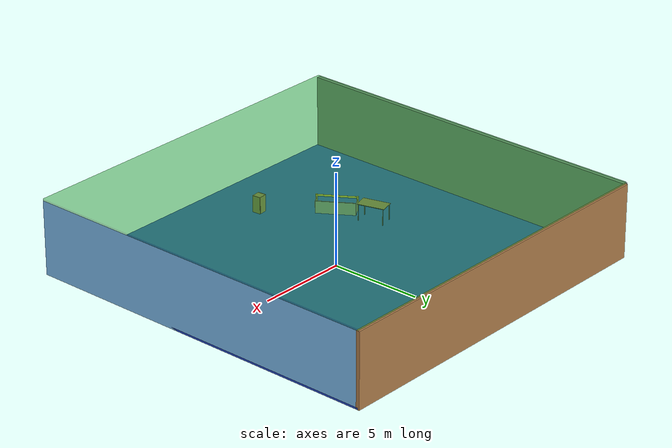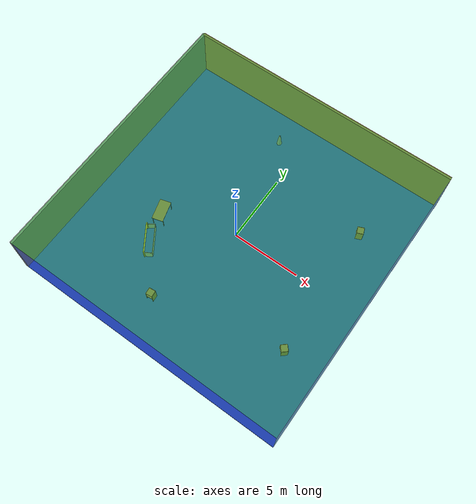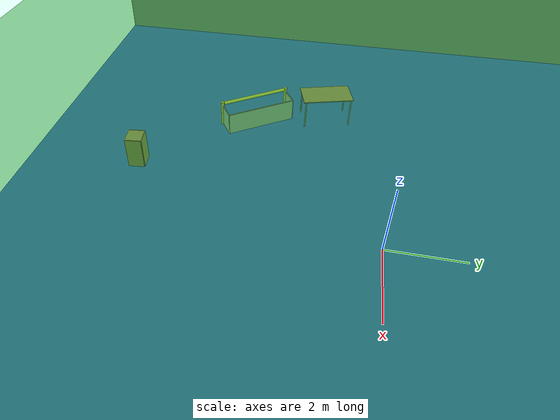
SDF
<sdf version="1.4">
 <world name="default">
  <physics type="ode">
   <max_step_size>0.001</max_step_size>
   <real_time_factor>1</real_time_factor>
   <real_time_update_rate>1000</real_time_update_rate>
   <gravity>0 0 -9.8</gravity>
  </physics>
  <scene><ambient>0.4 0.4 0.4 1</ambient><background>0.7 0.7 0.7 1</background><shadows>1</shadows></scene>
  <model name="Surrounding">
   <static>1</static>
   <link name="Ceiling">
    <collision name="Ceiling_Collision"><geometry><box><size>20 20 0.1</size></box></geometry></collision>
    <visual name="Ceiling_Visual">
     <geometry><box><size>20 20 0.1</size></box></geometry>
     <material>
      <script><uri>file://media/materials/scripts/gazebo.material</uri><name>Gazebo/GreenTransparent</name></script>
     </material>
    </visual>
    <pose>0 0 4.05 0 0 0</pose>
   </link>
   <link name="Wall_South">
    <collision name="Wall_South_Collision">
     <geometry><box><size>20 0 4</size></box></geometry>
     <pose>0 0 2 0 -0 0</pose>
    </collision>
    <visual name="Wall_South_Visual">
     <pose>0 0 2 0 -0 0</pose>
     <geometry><box><size>20 0 4</size></box></geometry>
     <material>
      <script><uri>file://media/materials/scripts/gazebo.material</uri><name>Gazebo/BlueTransparent</name></script>
     </material>
    </visual>
    <velocity_decay><linear>0</linear><angular>0</angular></velocity_decay>
    <pose>0 -10 0 0 -0 0</pose>
   </link>
   <link name="Wall_East">
    <collision name="Wall_21_Collision">
     <geometry><box><size>20 0 4</size></box></geometry>
     <pose>0 0 2 0 -0 0</pose>
    </collision>
    <visual name="Wall_21_Visual">
     <pose>0 0 2 0 -0 0</pose>
     <geometry><box><size>20 0 4</size></box></geometry>
     <material>
      <script><uri>file://media/materials/scripts/gazebo.material</uri><name>Gazebo/SkyBlue</name></script>
     </material>
    </visual>
    <velocity_decay><linear>0</linear><angular>0</angular></velocity_decay>
    <pose>10 0 0 0 -0 1.5708</pose>
   </link>
   <link name="Wall_North">
    <collision name="Wall_22_Collision">
     <geometry><box><size>20 0.2 4</size></box></geometry>
     <pose>0 0 2 0 -0 0</pose>
    </collision>
    <visual name="Wall_22_Visual">
     <pose>0 0 2 0 -0 0</pose>
     <geometry><box><size>20 0.2 4</size></box></geometry>
     <material>
      <script><uri>file://media/materials/scripts/gazebo.material</uri><name>Gazebo/WoodPallet</name></script>
     </material>
    </visual>
    <velocity_decay><linear>0</linear><angular>0</angular></velocity_decay>
    <pose>0 10 0 0 -0 0</pose>
   </link>
   <link name="Wall_West">
    <collision name="Wall_23_Collision">
     <geometry><box><size>20 0.2 4</size></box></geometry>
     <pose>0 0 2 0 -0 0</pose>
    </collision>
    <visual name="Wall_23_Visual">
     <pose>0 0 2 0 -0 0</pose>
     <geometry><box><size>20 0.2 4</size></box></geometry>
     <material>
      <script><uri>file://media/materials/scripts/gazebo.material</uri><name>Gazebo/GreyGradientSky</name></script>
     </material>
    </visual>
    <velocity_decay><linear>0</linear><angular>0</angular></velocity_decay>
    <pose>-10 0 0 0 0 -1.5708</pose>
   </link>
   <link name="Ground_link">
    <collision name="collision">
     <pose>0 0 .05 0 -0 0</pose>
     <geometry><box><size>20 20 0.1</size></box></geometry>
    </collision>
    <visual name="visual">
     <pose>0 0 .05 0 -0 0</pose>
     <geometry><box><size>20 20 0.1</size></box></geometry>
     <material>
      <script><uri>file://media/materials/scripts/gazebo.material</uri><name>Gazebo/BlueGlow</name></script>
     </material>
    </visual>
   </link>
   <static>1</static>
  </model>
  <spherical_coordinates>
   <surface_model>EARTH_WGS84</surface_model>
   <latitude_deg>0</latitude_deg>
   <longitude_deg>0</longitude_deg>
   <elevation>0</elevation>
   <heading_deg>0</heading_deg>
  </spherical_coordinates>
  <light name="lightball_0" type="diffuse">
   <diffuse>0.8 0.8 0.8 1</diffuse>
   <specular>0.2 0.2 0.2 1</specular>
   <attenuation>
    <range>100</range>
    <constant>0.7</constant>
    <linear>0.01</linear>
    <quadratic>0.001</quadratic>
   </attenuation>
   <direction>-0.5 0.1 -0.9</direction>
   <pose>2.04850457582 2.73201558544 0.919545225614 0 0 0</pose>
  </light>
  <light name="lightball_1" type="diffuse">
   <diffuse>0.8 0.8 0.8 1</diffuse>
   <specular>0.2 0.2 0.2 1</specular>
   <attenuation>
    <range>100</range>
    <constant>0.7</constant>
    <linear>0.01</linear>
    <quadratic>0.001</quadratic>
   </attenuation>
   <direction>-0.5 0.1 -0.9</direction>
   <pose>-1.14018087923 -6.86013961152 0.902428496885 0 0 0</pose>
  </light>
  <light name="lightball_2" type="diffuse">
   <diffuse>0.8 0.8 0.8 1</diffuse>
   <specular>0.2 0.2 0.2 1</specular>
   <attenuation>
    <range>100</range>
    <constant>0.7</constant>
    <linear>0.01</linear>
    <quadratic>0.001</quadratic>
   </attenuation>
   <direction>-0.5 0.1 -0.9</direction>
   <pose>8.79784454746 -4.23694523891 1.34630366513 0 0 0</pose>
  </light>
  <light name="lightball_3" type="diffuse">
   <diffuse>0.8 0.8 0.8 1</diffuse>
   <specular>0.2 0.2 0.2 1</specular>
   <attenuation>
    <range>100</range>
    <constant>0.7</constant>
    <linear>0.01</linear>
    <quadratic>0.001</quadratic>
   </attenuation>
   <direction>-0.5 0.1 -0.9</direction>
   <pose>-5.49380108943 8.46893753367 2.15612231395 0 0 0</pose>
  </light>
  <light name="lightball_4" type="diffuse">
   <diffuse>0.8 0.8 0.8 1</diffuse>
   <specular>0.2 0.2 0.2 1</specular>
   <attenuation>
    <range>100</range>
    <constant>0.7</constant>
    <linear>0.01</linear>
    <quadratic>0.001</quadratic>
   </attenuation>
   <direction>-0.5 0.1 -0.9</direction>
   <pose>4.08854257894 3.72006049244 2.44412765827 0 0 0</pose>
  </light>
  <light name="lightball_5" type="diffuse">
   <diffuse>0.8 0.8 0.8 1</diffuse>
   <specular>0.2 0.2 0.2 1</specular>
   <attenuation>
    <range>100</range>
    <constant>0.7</constant>
    <linear>0.01</linear>
    <quadratic>0.001</quadratic>
   </attenuation>
   <direction>-0.5 0.1 -0.9</direction>
   <pose>9.90451656902 -7.12782144967 3.1176534308 0 0 0</pose>
  </light>
  <light name="lightball_6" type="diffuse">
   <diffuse>0.8 0.8 0.8 1</diffuse>
   <specular>0.2 0.2 0.2 1</specular>
   <attenuation>
    <range>100</range>
    <constant>0.7</constant>
    <linear>0.01</linear>
    <quadratic>0.001</quadratic>
   </attenuation>
   <direction>-0.5 0.1 -0.9</direction>
   <pose>1.28956037953 9.17599992558 1.11028750538 0 0 0</pose>
  </light>
  <light name="lightball_7" type="diffuse">
   <diffuse>0.8 0.8 0.8 1</diffuse>
   <specular>0.2 0.2 0.2 1</specular>
   <attenuation>
    <range>100</range>
    <constant>0.7</constant>
    <linear>0.01</linear>
    <quadratic>0.001</quadratic>
   </attenuation>
   <direction>-0.5 0.1 -0.9</direction>
   <pose>-1.72960814649 -0.497486605867 2.79486693426 0 0 0</pose>
  </light>
  <light name="lightball_8" type="diffuse">
   <diffuse>0.8 0.8 0.8 1</diffuse>
   <specular>0.2 0.2 0.2 1</specular>
   <attenuation>
    <range>100</range>
    <constant>0.7</constant>
    <linear>0.01</linear>
    <quadratic>0.001</quadratic>
   </attenuation>
   <direction>-0.5 0.1 -0.9</direction>
   <pose>-7.03088584983 1.24364977524 2.66458831009 0 0 0</pose>
  </light>
  <light name="lightball_9" type="diffuse">
   <diffuse>0.8 0.8 0.8 1</diffuse>
   <specular>0.2 0.2 0.2 1</specular>
   <attenuation>
    <range>100</range>
    <constant>0.7</constant>
    <linear>0.01</linear>
    <quadratic>0.001</quadratic>
   </attenuation>
   <direction>-0.5 0.1 -0.9</direction>
   <pose>7.65367183747 3.06975518628 3.56482056884 0 0 0</pose>
  </light>
  <light name="lightball_10" type="diffuse">
   <diffuse>0.8 0.8 0.8 1</diffuse>
   <specular>0.2 0.2 0.2 1</specular>
   <attenuation>
    <range>100</range>
    <constant>0.7</constant>
    <linear>0.01</linear>
    <quadratic>0.001</quadratic>
   </attenuation>
   <direction>-0.5 0.1 -0.9</direction>
   <pose>4.89605566202 -9.98918487289 3.75177297294 0 0 0</pose>
  </light>
  <include>
   <uri>model://robocup_3Dsim_goal</uri>
   <pose>-4.60826431669 -3.9782754437 0 0 0 0.574684578816</pose>
  </include>
  <include><uri>model://table</uri><pose>-4.91837213878 -1.80003225792 0 0 0 1.8436841108</pose></include>
  <include><uri>model://cabinet</uri><pose>-1.85006267186 -6.8271008045 0 0 0 1.66533072351</pose></include>
  <include>
   <uri>model://construction_cone</uri>
   <pose>-1.67640924902 7.72342452884 0 0 0 2.94501974776</pose>
  </include>
  <include><uri>model://cabinet</uri><pose>7.21334965028 -4.80513840631 0 0 0 0.736149580383</pose></include>
  <include><uri>model://cabinet</uri><pose>6.85354532155 4.8391023152 0 0 0 0.374783297292</pose></include>
 </world>
</sdf>

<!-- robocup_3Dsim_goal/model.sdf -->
<sdf version="1.5">
  <model name="robocup_3d_goal">
    <static>true</static>
    <link name="left_post">
      <pose>0 1.05 0.45 0 0 0</pose>
      <collision name="collision">
        <geometry>
          <cylinder>
            <radius>0.05</radius>
            <length>0.9</length>
          </cylinder>
        </geometry>
      </collision>
      <visual name="visual">
        <geometry>
          <cylinder>
            <radius>0.05</radius>
            <length>0.9</length>
          </cylinder>
        </geometry>
        <material>
          <script>
            <uri>file://media/materials/scripts/gazebo.material</uri>
            <name>Gazebo/ZincYellow</name>
          </script>
        </material>
      </visual>
    </link>
    <link name="left_support_horiz_lower">
      <pose>0.30 1.05 0.01 0 0 0</pose>
      <collision name="collision">
        <geometry>
          <box>
            <size>0.50 0.02 0.02</size>
          </box>
        </geometry>
      </collision>
      <visual name="visual">
        <geometry>
          <box>
            <size>0.50 0.02 0.02</size>
          </box>
        </geometry>
        <material>
          <script>
            <uri>file://media/materials/scripts/gazebo.material</uri>
            <name>Gazebo/White</name>
          </script>
        </material>
      </visual>
    </link>
    <link name="left_support_horiz_upper">
      <pose>0.30 1.05 0.79 0 0 0</pose>
      <collision name="collision">
        <geometry>
          <box>
            <size>0.50 0.02 0.02</size>
          </box>
        </geometry>
      </collision>
      <visual name="visual">
        <geometry>
          <box>
            <size>0.50 0.02 0.02</size>
          </box>
        </geometry>
        <material>
          <script>
            <uri>file://media/materials/scripts/gazebo.material</uri>
            <name>Gazebo/White</name>
          </script>
        </material>
      </visual>
    </link>
    <link name="left_support_vertical">
      <pose>0.56 1.05 0.4 0 1.5708 0</pose>
      <collision name="collision">
        <geometry>
          <box>
            <size>0.80 0.02 0.02</size>
          </box>
        </geometry>
      </collision>
      <visual name="visual">
        <geometry>
          <box>
            <size>0.80 0.02 0.02</size>
          </box>
        </geometry>
        <material>
          <script>
            <uri>file://media/materials/scripts/gazebo.material</uri>
            <name>Gazebo/White</name>
          </script>
        </material>
      </visual>
    </link>
    <link name="right_support_horiz_lower">
      <pose>0.30 -1.05 0.01 0 0 0</pose>
      <collision name="collision">
        <geometry>
          <box>
            <size>0.50 0.02 0.02</size>
          </box>
        </geometry>
      </collision>
      <visual name="visual">
        <geometry>
          <box>
            <size>0.50 0.02 0.02</size>
          </box>
        </geometry>
        <material>
          <script>
            <uri>file://media/materials/scripts/gazebo.material</uri>
            <name>Gazebo/White</name>
          </script>
        </material>
      </visual>
    </link>
    <link name="right_support_horiz_upper">
      <pose>0.30 -1.05 0.79 0 0 0</pose>
      <collision name="collision">
        <geometry>
          <box>
            <size>0.50 0.02 0.02</size>
          </box>
        </geometry>
      </collision>
      <visual name="visual">
        <geometry>
          <box>
            <size>0.50 0.02 0.02</size>
          </box>
        </geometry>
        <material>
          <script>
            <uri>file://media/materials/scripts/gazebo.material</uri>
            <name>Gazebo/White</name>
          </script>
        </material>
      </visual>
    </link>
    <link name="right_support_vertical">
      <pose>0.56 -1.05 0.4 0 1.5708 0</pose>
      <collision name="collision">
        <geometry>
          <box>
            <size>0.80 0.02 0.02</size>
          </box>
        </geometry>
      </collision>
      <visual name="visual">
        <geometry>
          <box>
            <size>0.80 0.02 0.02</size>
          </box>
        </geometry>
        <material>
          <script>
            <uri>file://media/materials/scripts/gazebo.material</uri>
            <name>Gazebo/White</name>
          </script>
        </material>
      </visual>
    </link>
    <link name="center_support_horiz_lower">
      <pose>0.56 0 0.01 0 1.5708 0</pose>
      <collision name="collision">
        <geometry>
          <box>
            <size>0.02 2.08 0.02</size>
          </box>
        </geometry>
      </collision>
      <visual name="visual">
        <geometry>
          <box>
            <size>0.02 2.08 0.02</size>
          </box>
        </geometry>
        <material>
          <script>
            <uri>file://media/materials/scripts/gazebo.material</uri>
            <name>Gazebo/White</name>
          </script>
        </material>
      </visual>
    </link>
    <link name="center_support_horiz_upper">
      <pose>0.56 0 0.79 0 1.5708 0</pose>
      <collision name="collision">
        <geometry>
          <box>
            <size>0.02 2.08 0.02</size>
          </box>
        </geometry>
      </collision>
      <visual name="visual">
        <geometry>
          <box>
            <size>0.02 2.08 0.02</size>
          </box>
        </geometry>
        <material>
          <script>
            <uri>file://media/materials/scripts/gazebo.material</uri>
            <name>Gazebo/White</name>
          </script>
        </material>
      </visual>
    </link>
    <link name="right_post">
      <pose>0 -1.05 0.45 0 0 0</pose>
      <collision name="collision">
        <geometry>
          <cylinder>
            <radius>0.05</radius>
            <length>0.9</length>
          </cylinder>
        </geometry>
      </collision>
      <visual name="visual">
        <geometry>
          <cylinder>
            <radius>0.05</radius>
            <length>0.9</length>
          </cylinder>
        </geometry>
        <material>
          <script>
            <uri>file://media/materials/scripts/gazebo.material</uri>
            <name>Gazebo/ZincYellow</name>
          </script>
        </material>
      </visual>
    </link>
    <link name="crossbar">
      <pose>0 0 0.85 1.57 1.57 0</pose>
      <collision name="collision">
        <geometry>
          <cylinder>
            <radius>0.05</radius>
            <length>2.0</length>
          </cylinder>
        </geometry>
      </collision>
      <visual name="visual">
        <geometry>
          <cylinder>
            <radius>0.05</radius>
            <length>2.0</length>
          </cylinder>
        </geometry>
        <material>
          <script>
            <uri>file://media/materials/scripts/gazebo.material</uri>
            <name>Gazebo/ZincYellow</name>
          </script>
        </material>
      </visual>
    </link>
    <link name="center_net">
      <pose>0.56 0 0.40 0 0 0</pose>
      <collision name="collision">
        <geometry>
          <box>
            <size>0.01 2.1 0.80</size>
          </box>
        </geometry>
      </collision>
      <visual name="visual">
        <geometry>
          <box>
            <size>0.01 2.1 0.80</size>
          </box>
        </geometry>
        <material>
          <script>
            <uri>model://../model_source/models/robocup09_spl_field/materials/scripts/</uri>
            <uri>model://../model_source/models/robocup09_spl_field/materials/textures/</uri>
            <name>RoboCup/Net</name>
          </script>
        </material>
      </visual>
    </link>
    <link name="left_net">
      <pose>0.30 1.05 0.40 0 0 0</pose>
      <collision name="collision">
        <geometry>
          <box>
            <size>0.50 0.01 0.76</size>
          </box>
        </geometry>
      </collision>
      <visual name="visual">
        <geometry>
          <box>
            <size>0.50 0.01 0.76</size>
          </box>
        </geometry>
        <material>
          <script>
            <uri>model://../model_source/models/robocup09_spl_field/materials/scripts/</uri>
            <uri>model://../model_source/models/robocup09_spl_field/materials/textures/</uri>
            <name>RoboCup/Net</name>
          </script>
        </material>
      </visual>
    </link>
    <link name="right_net">
      <pose>0.30 -1.05 0.40 0 0 0</pose>
      <collision name="collision">
        <geometry>
          <box>
            <size>0.50 0.01 0.76</size>
          </box>
        </geometry>
      </collision>
      <visual name="visual">
        <geometry>
          <box>
            <size>0.50 0.01 0.76</size>
          </box>
        </geometry>
        <material>
          <script>
            <uri>model://../model_source/models/robocup09_spl_field/materials/scripts/</uri>
            <uri>model://../model_source/models/robocup09_spl_field/materials/textures/</uri>
            <name>RoboCup/Net</name>
          </script>
        </material>
      </visual>
    </link>
  </model>
</sdf>

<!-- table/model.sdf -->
<sdf version="1.5">
  <model name="table">
    <static>true</static>
    <link name="link">
      <collision name="surface">
        <pose>0 0 1.0 0 0 0</pose>
        <geometry>
          <box>
            <size>1.5 0.8 0.03</size>
          </box>
        </geometry>
        <surface>
          <friction>
            <ode>
              <mu>0.6</mu>
              <mu2>0.6</mu2>
            </ode>
          </friction>
        </surface>
      </collision>
      <visual name="visual1">
        <pose>0 0 1.0 0 0 0</pose>
        <geometry>
          <box>
            <size>1.5 0.8 0.03</size>
          </box>
        </geometry>
        <material>
          <script>
            <uri>model://media/materials/scripts/gazebo.material</uri>
            <name>Gazebo/Wood</name>
          </script>
        </material>
      </visual>
      <collision name="front_left_leg">
        <pose>0.68 0.38 0.5 0 0 0</pose>
        <geometry>
          <cylinder>
            <radius>0.02</radius>
            <length>1.0</length>
          </cylinder>
        </geometry>
      </collision>
      <visual name="front_left_leg">
        <pose>0.68 0.38 0.5 0 0 0</pose>
        <geometry>
          <cylinder>
            <radius>0.02</radius>
            <length>1.0</length>
          </cylinder>
        </geometry>
        <material>
          <script>
            <uri>model://media/materials/scripts/gazebo.material</uri>
            <name>Gazebo/Grey</name>
          </script>
        </material>
      </visual>
      <collision name="front_right_leg">
        <pose>0.68 -0.38 0.5 0 0 0</pose>
        <geometry>
          <cylinder>
            <radius>0.02</radius>
            <length>1.0</length>
          </cylinder>
        </geometry>
      </collision>
      <visual name="front_right_leg">
        <pose>0.68 -0.38 0.5 0 0 0</pose>
        <geometry>
          <cylinder>
            <radius>0.02</radius>
            <length>1.0</length>
          </cylinder>
        </geometry>
        <material>
          <script>
            <uri>model://media/materials/scripts/gazebo.material</uri>
            <name>Gazebo/Grey</name>
          </script>
        </material>
      </visual>
      <collision name="back_right_leg">
        <pose>-0.68 -0.38 0.5 0 0 0</pose>
        <geometry>
          <cylinder>
            <radius>0.02</radius>
            <length>1.0</length>
          </cylinder>
        </geometry>
      </collision>
      <visual name="back_right_leg">
        <pose>-0.68 -0.38 0.5 0 0 0</pose>
        <geometry>
          <cylinder>
            <radius>0.02</radius>
            <length>1.0</length>
          </cylinder>
        </geometry>
        <material>
          <script>
            <uri>model://media/materials/scripts/gazebo.material</uri>
            <name>Gazebo/Grey</name>
          </script>
        </material>
      </visual>
      <collision name="back_left_leg">
        <pose>-0.68 0.38 0.5 0 0 0</pose>
        <geometry>
          <cylinder>
            <radius>0.02</radius>
            <length>1.0</length>
          </cylinder>
        </geometry>
      </collision>
      <visual name="back_left_leg">
        <pose>-0.68 0.38 0.5 0 0 0</pose>
        <geometry>
          <cylinder>
            <radius>0.02</radius>
            <length>1.0</length>
          </cylinder>
        </geometry>
        <material>
          <script>
            <uri>model://media/materials/scripts/gazebo.material</uri>
            <name>Gazebo/Grey</name>
          </script>
        </material>
      </visual>
    </link>
  </model>
</sdf>

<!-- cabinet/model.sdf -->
<sdf version="1.5">
  <model name="cabinet">
    <static>true</static>
    <link name="cabinet_bottom_plate">
      <inertial>
        <pose>0 0 -1 0 0 0</pose>
        <inertia>
          <ixx>2.050000</ixx>
          <ixy>0</ixy>
          <ixz>0</ixz>
          <iyy>2.050000</iyy>
          <iyz>0</iyz>
          <izz>2.050000</izz>
        </inertia>
        <mass>25.000000</mass>
      </inertial>
      <collision name="cabinet_bottom_plate_geom">
        <pose>0 0 0.010000 0 0 0</pose>
        <geometry>
          <box>
            <size>0.450000 0.450000 0.020000</size>
          </box>
        </geometry>
      </collision>
      <visual name="cabinet_bottom_plate_geom_visual">
        <pose>0 0 0.010000 0 0 0</pose>
        <geometry>
          <box>
            <size>0.450000 0.450000 0.020000</size>
          </box>
        </geometry>
        <material>
          <script>
            <uri>model://media/materials/scripts/gazebo.material</uri>
            <name>Gazebo/Wood</name>
          </script>
        </material>
      </visual>
      <collision name="cabinet_bottom_plate_geom_cabinet_back_plate">
        <pose>0.235000 0 0.510000 0 0 0</pose>
        <geometry>
          <box>
            <size>0.020000 0.450000 1.020000</size>
          </box>
        </geometry>
      </collision>
      <visual name="cabinet_bottom_plate_geom_cabinet_back_plate_visual">
        <pose>0.235000 0 0.510000 0 0 0</pose>
        <geometry>
          <box>
            <size>0.020000 0.450000 1.020000</size>
          </box>
        </geometry>
        <material>
          <script>
            <uri>model://media/materials/scripts/gazebo.material</uri>
            <name>Gazebo/Wood</name>
          </script>
        </material>
      </visual>
      <collision name="cabinet_bottom_plate_geom_cabinet_left_plate">
        <pose>0 0.235000 0.510000 0 0 0</pose>
        <geometry>
          <box>
            <size>0.450000 0.020000 1.020000</size>
          </box>
        </geometry>
      </collision>
      <visual name="cabinet_bottom_plate_geom_cabinet_left_plate_visual">
        <pose>0 0.235000 0.510000 0 0 0</pose>
        <geometry>
          <box>
            <size>0.450000 0.020000 1.020000</size>
          </box>
        </geometry>
        <material>
          <script>
            <uri>model://media/materials/scripts/gazebo.material</uri>
            <name>Gazebo/Wood</name>
          </script>
        </material>
      </visual>
      <collision name="cabinet_bottom_plate_geom_cabinet_middle_plate">
        <pose>0 0 0.510000 0 0 0</pose>
        <geometry>
          <box>
            <size>0.450000 0.450000 0.020000</size>
          </box>
        </geometry>
      </collision>
      <visual name="cabinet_bottom_plate_geom_cabinet_middle_plate_visual">
        <pose>0 0 0.510000 0 0 0</pose>
        <geometry>
          <box>
            <size>0.450000 0.450000 0.020000</size>
          </box>
        </geometry>
        <material>
          <script>
            <uri>model://media/materials/scripts/gazebo.material</uri>
            <name>Gazebo/Wood</name>
          </script>
        </material>
      </visual>
      <collision name="cabinet_bottom_plate_geom_cabinet_right_plate">
        <pose>0 -0.235000 0.510000 0 0 0</pose>
        <geometry>
          <box>
            <size>0.450000 0.020000 1.020000</size>
          </box>
        </geometry>
      </collision>
      <visual name="cabinet_bottom_plate_geom_cabinet_right_plate_visual">
        <pose>0 -0.235000 0.510000 0 0 0</pose>
        <geometry>
          <box>
            <size>0.450000 0.020000 1.020000</size>
          </box>
        </geometry>
        <material>
          <script>
            <uri>model://media/materials/scripts/gazebo.material</uri>
            <name>Gazebo/Wood</name>
          </script>
        </material>
      </visual>
      <collision name="cabinet_bottom_plate_geom_cabinet_top_plate">
        <pose>0 0 1.010000 0 0 0</pose>
        <geometry>
          <box>
            <size>0.450000 0.450000 0.020000</size>
          </box>
        </geometry>
      </collision>
      <visual name="cabinet_bottom_plate_geom_cabinet_top_plate_visual">
        <pose>0 0 1.010000 0 0 0</pose>
        <geometry>
          <box>
            <size>0.450000 0.450000 0.020000</size>
          </box>
        </geometry>
        <material>
          <script>
            <uri>model://media/materials/scripts/gazebo.material</uri>
            <name>Gazebo/Wood</name>
          </script>
        </material>
      </visual>
    </link>
  </model>
</sdf>

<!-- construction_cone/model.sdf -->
<sdf version="1.5">
  <model name="Construction Cone">
    <link name="link">
      <collision name="collision">
        <geometry>
          <mesh>
            <scale>10 10 10</scale>
            <uri>file://isr-testbed/construction_cone/meshes/construction_cone.dae</uri>
          </mesh>
        </geometry>
      </collision>
      <visual name="visual">
        <geometry>
          <mesh>
            <scale>10 10 10</scale>
            <uri>file://isr-testbed/construction_cone/meshes/construction_cone.dae</uri>
          </mesh>
        </geometry>
      </visual>
    </link>
  </model>
</sdf>
